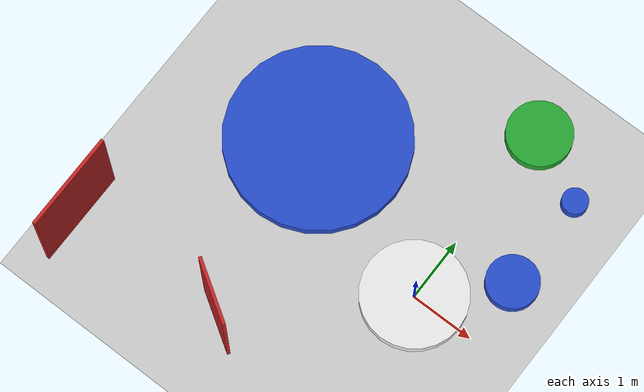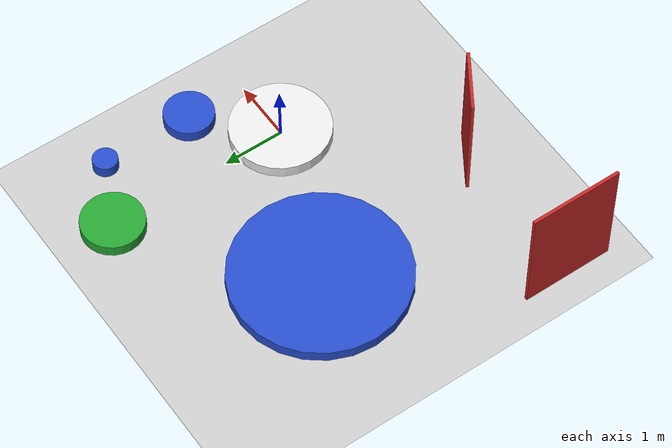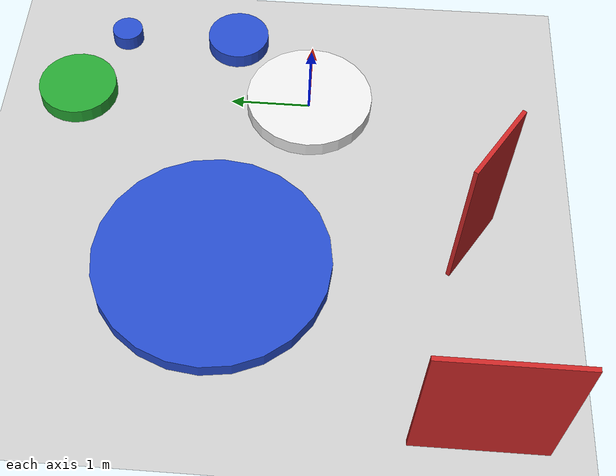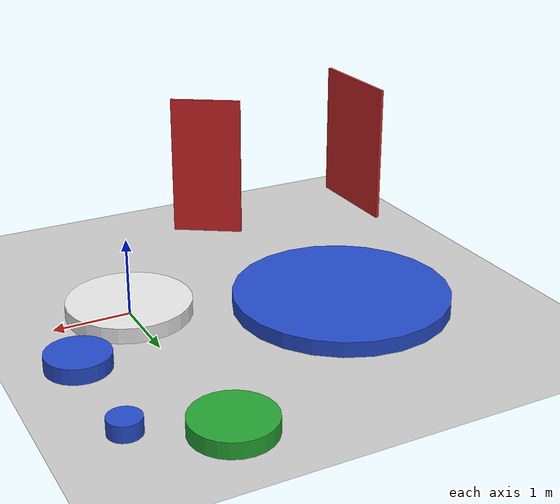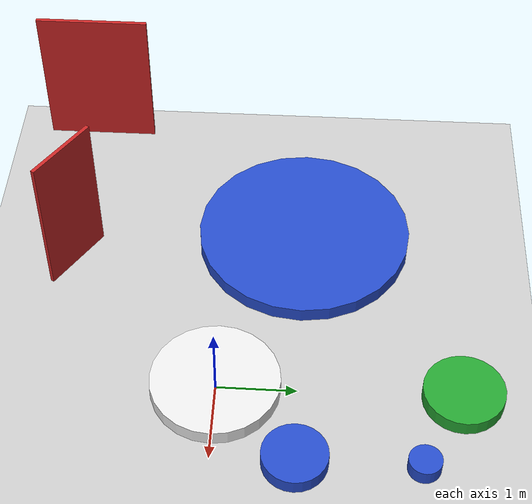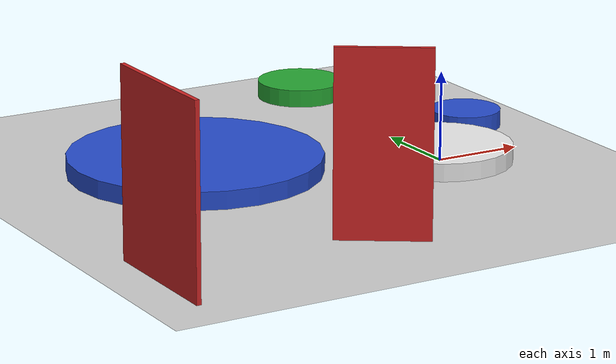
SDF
<?xml version="1.0" ?>
<sdf version="1.5">
  <world name="default">
    <!-- A global light source -->
    <include>
      <uri>model://sun</uri>
    </include>
    <!-- A ground plane -->
    <include>
      <uri>model://ground_plane</uri>
    </include>
    <!-- Ground regions -->
    <model name='region_start'>
      <pose frame=''>0.0 0.0 0.1 0 0 0</pose>
      <link name='link'>
        <collision name='collision'>
          <geometry>
            <cylinder>
              <radius>0.8</radius>
              <length>0.2</length>
            </cylinder>
          </geometry>
        </collision>
        <visual name='visual'>
          <geometry>
            <cylinder>
              <radius>0.8</radius>
              <length>0.2</length>
            </cylinder>
          </geometry>
          <material>
            <script>
              <name>Gazebo/White</name>
              <uri>file://media/materials/scripts/gazebo.material</uri>
            </script>
          </material>
        </visual>
      </link>
    </model>
    <model name='region_r0'>
      <pose frame=''>1.0 1.0 0.1 0 0 0</pose>
      <link name='link'>
        <collision name='collision'>
          <geometry>
            <cylinder>
              <radius>0.4</radius>
              <length>0.2</length>
            </cylinder>
          </geometry>
        </collision>
        <visual name='visual'>
          <geometry>
            <cylinder>
              <radius>0.4</radius>
              <length>0.2</length>
            </cylinder>
          </geometry>
          <material>
            <script>
              <name>Gazebo/Blue</name>
              <uri>file://media/materials/scripts/gazebo.material</uri>
            </script>
          </material>
        </visual>
      </link>
    </model>
    <model name='region_r1'>
      <pose frame=''>-2.5 1.0 0.1 0 0 0</pose>
      <link name='link'>
        <collision name='collision'>
          <geometry>
            <cylinder>
              <radius>1.4</radius>
              <length>0.2</length>
            </cylinder>
          </geometry>
        </collision>
        <visual name='visual'>
          <geometry>
            <cylinder>
              <radius>1.4</radius>
              <length>0.2</length>
            </cylinder>
          </geometry>
          <material>
            <script>
              <name>Gazebo/Blue</name>
              <uri>file://media/materials/scripts/gazebo.material</uri>
            </script>
          </material>
        </visual>
      </link>
    </model>
    <model name='region_r2'>
      <pose frame=''>1.0 2.5 0.1 0 0 0</pose>
      <link name='link'>
        <collision name='collision'>
          <geometry>
            <cylinder>
              <radius>0.2</radius>
              <length>0.2</length>
            </cylinder>
          </geometry>
        </collision>
        <visual name='visual'>
          <geometry>
            <cylinder>
              <radius>0.2</radius>
              <length>0.2</length>
            </cylinder>
          </geometry>
          <material>
            <script>
              <name>Gazebo/Blue</name>
              <uri>file://media/materials/scripts/gazebo.material</uri>
            </script>
          </material>
        </visual>
      </link>
    </model>
    <model name='region_goal'>
      <pose frame=''>0.0 3.0 0.1 0 0 0</pose>
      <link name='link'>
        <collision name='collision'>
          <geometry>
            <cylinder>
              <radius>0.5</radius>
              <length>0.2</length>
            </cylinder>
          </geometry>
        </collision>
        <visual name='visual'>
          <geometry>
            <cylinder>
              <radius>0.5</radius>
              <length>0.2</length>
            </cylinder>
          </geometry>
          <material>
            <script>
              <name>Gazebo/Green</name>
              <uri>file://media/materials/scripts/gazebo.material</uri>
            </script>
          </material>
        </visual>
      </link>
    </model>
    <model name='wall_00'>
    <pose frame=''>-2.0 -2.0 1.0 0 0 1.0</pose>
    <link name='link'>
    <collision name='collision'>
      <geometry>
        <box>
          <size>0.05 1.0 2</size>
        </box>
      </geometry>
    </collision>
    <visual name='visual'>
      <geometry>
        <box>
          <size>0.05 1.0 2</size>
        </box>
      </geometry>
      <material>
        <script>
          <name>Gazebo/Red</name>
          <uri>file://media/materials/scripts/gazebo.material</uri>
        </script>
      </material>
    </visual>
    </link>
    </model>
    <model name='wall_01'>
    <pose frame=''>-4.5 -2.0 1.0 0 0 0.0</pose>
    <link name='link'>
    <collision name='collision'>
      <geometry>
        <box>
          <size>0.05 1.5 2</size>
        </box>
      </geometry>
    </collision>
    <visual name='visual'>
      <geometry>
        <box>
          <size>0.05 1.5 2</size>
        </box>
      </geometry>
      <material>
        <script>
          <name>Gazebo/Red</name>
          <uri>file://media/materials/scripts/gazebo.material</uri>
        </script>
      </material>
    </visual>
    </link>
    </model>
  </world>
</sdf>
